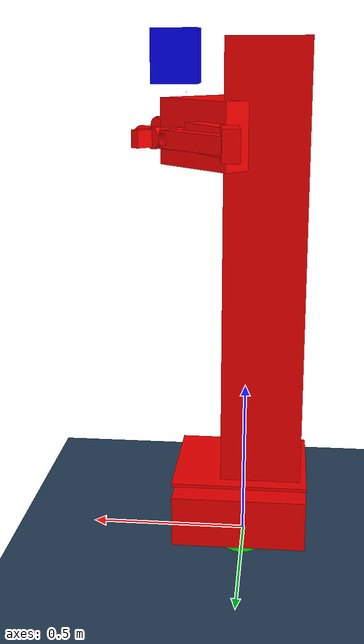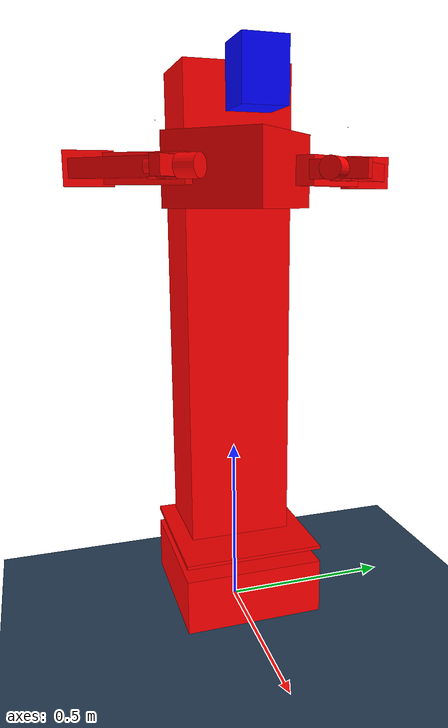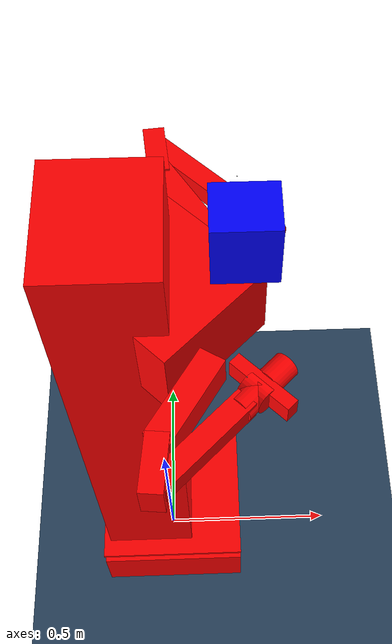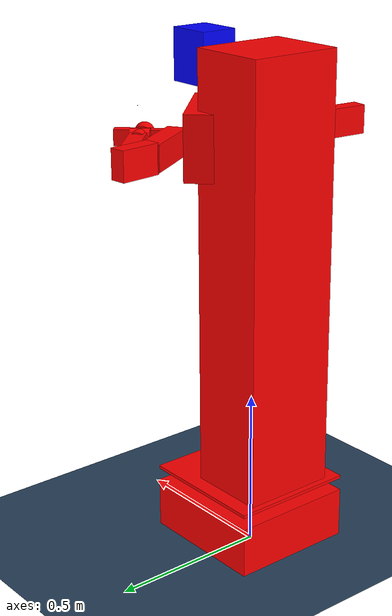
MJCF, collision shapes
<mujoco model="mmk2">

  <option integrator="RK4" solver="Newton" />
  <compiler angle="radian" meshdir="assets" texturedir="assets" />

  <default>
    <default class="obj_visual">
      <geom group="2" type="mesh" contype="0" conaffinity="0" />
    </default>
    <default class="obj_collision">
      <geom group="3" condim="6" solimp="2 1 0.01" solref="0.001 10" friction="1 0.005 0.0001" type="mesh" />
    </default>

    <default class="joint1">
      <joint axis="0 0 1" range="-3.14 2.09" actuatorfrcrange="-240 240" damping="2" frictionloss="150" />
      <position ctrlrange="-3.14 2.09" />
    </default>

    <default class="joint2">
      <joint axis="0 0 1" range="-2.96 0.17" actuatorfrcrange="-240 240" damping="2" frictionloss="150" />
      <position ctrlrange="-2.96 0.17" />
    </default>

    <default class="joint3">
      <joint axis="0 0 1" range="-0.087 3.14" actuatorfrcrange="-240 240" damping="2" frictionloss="150" />
      <position ctrlrange="-0.087 3.14" />
    </default>

    <default class="joint4">
      <joint axis="0 0 1" range="-2.96 2.96" actuatorfrcrange="-240 240" damping="1" frictionloss="50" />
      <position ctrlrange="-2.96 2.96" />
    </default>

    <default class="joint5">
      <joint axis="0 0 1" range="-1.74 1.74" actuatorfrcrange="-1000 1000" damping="1" frictionloss="50" />
      <position ctrlrange="-1.74 1.74" />
    </default>

    <default class="joint6">
      <joint axis="0 0 1" range="-3.14 3.14" actuatorfrcrange="-240 240" damping="0.1" frictionloss="5" />
      <position ctrlrange="-3.14 3.14" />
    </default>

    <default class="finger1">
      <joint axis="0 1 0" range="-0.04 0" type="slide" damping="0.5" frictionloss="15" />
    </default>

    <default class="finger2">
      <joint axis="0 1 0" range="0 0.04" type="slide" damping="0.5" frictionloss="15" />
    </default>

    <default class="slide_joint">
      <joint range="0.15 0.15" type="slide" axis="0 0 -1" frictionloss="1000000000" damping="1000000000" actuatorfrcrange="-1000000000 1000000000" />
      <position ctrlrange="0.15 0.15" kp="100000000" kv="10000000" />
    </default>
    <default class="head_yaw_joint">
      <joint axis="0 0 1" range="0.0 0.0" />
      <position ctrlrange="0.0 0.0" kp="5000" kv="100" />
    </default>
    <default class="head_pitch_joint">
      <joint axis="0 0 -1" range="-1.0 -1.0" />
      <position ctrlrange="-1.0 -1.0" kp="5000" kv="100" />
    </default>

    <default class="wheel">
      <joint axis="0 0 -1" damping="0.5" frictionloss="0.1" />
      <motor ctrlrange="-35 35" forcerange="-35 35" />
    </default>

  </default>

  <asset>
    <material name="Paint_Matte_Black" specular="0.5" shininess="0.5" rgba="0.00111266039 0.00111266039 0.00111266039 1.0" />
    <material name="Paint_Metallic_Cool_Grey" specular="0" shininess="0" rgba="1 1 1 1" emission="1" />
    <material name="Gree_Light_Base" specular="0.5" shininess="0.5" rgba="0.6 1 1 1" />
  </asset>

  <asset>
    <mesh name="arm_base_0" file="airbot_play/arm_base_0.obj" />
    <mesh name="arm_base_1" file="airbot_play/arm_base_1.obj" />
    <mesh name="link1" file="airbot_play/link1.obj" />
    <mesh name="link2_0" file="airbot_play/link2_0.obj" />
    <mesh name="link2_1" file="airbot_play/link2_1.obj" />
    <mesh name="link3_0" file="airbot_play/link3_0.obj" />
    <mesh name="link3_1" file="airbot_play/link3_1.obj" />
    <mesh name="link4" file="airbot_play/link4.obj" />
    <mesh name="link5_0" file="airbot_play/link5_0.obj" />
    <mesh name="link5_1" file="airbot_play/link5_1.obj" />
    <mesh name="link6" file="airbot_play/link6.stl" />
    <mesh name="camera_stand" file="airbot_play/camera_stand.obj" />
    <mesh name="left" file="airbot_play/left.obj" />
    <mesh name="right" file="airbot_play/right.obj" />
  </asset>

  <asset>

    <material name="MMK_Paint_Metallic_Cool_Grey" specular="0" shininess="0" rgba="1 1 1 1" emission="1" />
    <material name="MMK_Paint_Matte_Black" specular="0.5" shininess="0.5" rgba="0.00111266039 0.00111266039 0.00111266039 1.0" />
    <material name="MMK_Clear_Shiny_Plastic_Black" specular="0.5" shininess="0.5" rgba="0 0 0 1.0" />
    <material name="MMK_Copper_Textured" specular="0.5" shininess="0.5" rgba="0.539052486 0.539052486 0.539052486 1.0" />

    <mesh name="lft_wheel_link" file="mmk2/lft_wheel_link.STL" />
    <mesh name="rgt_wheel_link" file="mmk2/rgt_wheel_link.STL" />
    <mesh name="rgt_behind_wheel_link" file="mmk2/rgt_behind_wheel_link.obj" />
    <mesh name="lft_behind_wheel_link" file="mmk2/lft_behind_wheel_link.obj" />
    <mesh name="rgt_front_wheel_link" file="mmk2/rgt_front_wheel_link.obj" />
    <mesh name="lft_front_wheel_link" file="mmk2/lft_front_wheel_link.obj" />

    <mesh name="head_yaw_link" file="mmk2/head_yaw_link.STL" />

    <mesh name="mmk2_agv_0" file="mmk2/mmk2_agv_0.obj" />
    <mesh name="mmk2_agv_1" file="mmk2/mmk2_agv_1.obj" />
    <mesh name="mmk2_agv_2" file="mmk2/mmk2_agv_2.obj" />
    <mesh name="mmk2_agv_3" file="mmk2/mmk2_agv_3.obj" />
    <mesh name="mmk2_agv_4" file="mmk2/mmk2_agv_4.obj" />

    <mesh name="slide_link_white" file="mmk2/slide_link_white.obj" />
    <mesh name="slide_link_black" file="mmk2/slide_link_black.obj" />

    <mesh name="mmk2_lift_link_0" file="mmk2/mmk2_lift_link_0.obj" />
    <mesh name="mmk2_lift_link_1" file="mmk2/mmk2_lift_link_1.STL" />
    <mesh name="mmk2_lift_link_2" file="mmk2/mmk2_lift_link_2.obj" />

    <mesh name="mmk2_head_0" file="mmk2/mmk2_head_0.obj" />
    <mesh name="mmk2_head_1" file="mmk2/mmk2_head_1.obj" />
    <mesh name="mmk2_head_2" file="mmk2/mmk2_head_2.obj" />

    <mesh name="head_white" file="mmk2/head_white.obj" />
    <mesh name="head_black" file="mmk2/head_black.obj" />
    <mesh name="head_green" file="mmk2/head_green.obj" />

  </asset>

  <contact>
    <exclude body1="slide_link" body2="head_pitch_link" />
    <exclude body1="slide_link" body2="head_yaw_link" />
    <exclude body1="slide_link" body2="lftarm_link2" />
    <exclude body1="slide_link" body2="rgtarm_link2" />
  </contact>

  <tendon>
    <fixed name="lft_gripper_gear">
      <joint joint="lft_finger_left_joint" coef="-12.5" />
      <joint joint="lft_finger_right_joint" coef="12.5" />
    </fixed>
    <fixed name="rgt_gripper_gear">
      <joint joint="rgt_finger_left_joint" coef="-12.5" />
      <joint joint="rgt_finger_right_joint" coef="12.5" />
    </fixed>
  </tendon>

  <equality>
    <joint joint1="lft_finger_left_joint" joint2="lft_finger_right_joint" polycoef="0 -1 0 0 0 " />
    <joint joint1="rgt_finger_left_joint" joint2="rgt_finger_right_joint" polycoef="0 -1 0 0 0" />
  </equality>

  <visual>
    <global offwidth="1920" offheight="1080" />
    <quality shadowsize="4096" offsamples="4" />
    <headlight diffuse="0.6 0.6 0.6" ambient=".3 .3 .3" specular="0 0 0" />
    <scale com="0.05" camera="0.06" framelength="0.5" framewidth="0.02" forcewidth="0.1" contactwidth="0.01" contactheight="0.05" />
  </visual>

  <asset>
    <texture type="2d" name="groundplane" builtin="checker" mark="edge" rgb1="0.2 0.3 0.4" rgb2="0.1 0.2 0.3" markrgb="0.8 0.8 0.8" width="300" height="300" />
    <material name="groundplane" texture="groundplane" texuniform="true" texrepeat="5 5" reflectance="0.2" />
  </asset>

  <worldbody>
    <light castshadow="false" directional="true" diffuse=".3 .3 .3" specular="0.3 0.3 0.3" pos="-1 -1 1" dir="1 1 -1" />
    <light directional="true" diffuse=".3 .3 .3" specular="0.3 0.3 0.3" pos="0 0 1" dir="-1 1 -1" />
    <light castshadow="false" directional="true" diffuse=".3 .3 .3" specular="0.3 0.3 0.3" pos="0 1 1" dir="0 -1 -1" />
    <geom name="floor" type="plane" size="0 0 0.01" material="groundplane" pos="0 0 0" />
    <body name="mmk2" pos="0 0 0">
      <joint type="free" frictionloss="0.0001" />
      <inertial pos="0 0 0" mass="1000000.0" diaginertia="1000000.0 1000000.0 1000000.0" />
      <body name="agv_link" pos="0.02371 0 0">
        <site name="base_link" pos="-0.02371 0 0" size="0.001" type="sphere" />
        <site name="laser" pos="0.09 0 0.215" size="0.001" type="sphere" />
        <geom mesh="mmk2_agv_0" material="Paint_Matte_Black" class="obj_visual" />
        <geom mesh="mmk2_agv_1" material="MMK_Copper_Textured" class="obj_visual" />
        <geom mesh="mmk2_agv_2" material="Paint_Metallic_Cool_Grey" class="obj_visual" />
        <geom mesh="mmk2_agv_3" material="Paint_Matte_Black" class="obj_visual" />
        <geom mesh="mmk2_agv_4" rgba="0.592 0.9 0.9 1" class="obj_visual" />

        <geom euler="0 0 0" type="box" rgba="1 0 0 1" group="4" size="0.21 0.2 0.005" pos="-0.015 0 0.235" density="725.0" />
        <geom euler="0 0 0" type="box" rgba="1 0 0 1" group="4" size="0.21 0.2 0.08" pos="-0.015 0 0.11" density="725.0" />
        <geom type="box" rgba="1 0 0 1" group="4" size="0.125 0.15 0.675" pos="-0.08 0 0.915" density="200.0" />

        <geom name="rgt_front_wheel" pos=" 0.13045 -0.089989 0.0585" mass="1.1566" type="sphere" size="0.06" rgba="1 0 0 1" group="4" condim="1" priority="1" />
        <geom name="lft_front_wheel" pos=" 0.13045  0.090011 0.0585" mass="1.1566" type="sphere" size="0.06" rgba="1 0 0 1" group="4" condim="1" priority="1" />
        <geom name="rgt_behind_wheel" pos="-0.15755 -0.099989 0.0585" mass="1.1566" type="sphere" size="0.06" rgba="1 0 0 1" group="4" condim="1" priority="1" />
        <geom name="lft_behind_wheel" pos="-0.15755  0.10001  0.0585" mass="1.1566" type="sphere" size="0.06" rgba="1 0 0 1" group="4" condim="1" priority="1" />

        <geom mesh="rgt_front_wheel_link" euler="0 0 1.5708" pos=" 0.13045 -0.089989 0.085" rgba="0.2 0.2 0.2 1" class="obj_visual" />
        <geom mesh="lft_front_wheel_link" euler="0 0 1.5708" pos=" 0.13045  0.090011 0.085" rgba="0.2 0.2 0.2 1" class="obj_visual" />
        <geom mesh="rgt_behind_wheel_link" euler="0 0 1.5708" pos="-0.15755 -0.099989 0.085" rgba="0.2 0.2 0.2 1" class="obj_visual" />
        <geom mesh="lft_behind_wheel_link" euler="0 0 1.5708" pos="-0.15755  0.10001  0.085" rgba="0.2 0.2 0.2 1" class="obj_visual" />

        <geom pos="-0.006 0 0.244" euler="0 0 1.5708" mesh="mmk2_lift_link_0" rgba="0.57 0.95 0.95 1" class="obj_visual" />
        <geom pos="-0.0062 0 0.24" euler="0 0 1.5708" mesh="mmk2_lift_link_1" material="Paint_Metallic_Cool_Grey" class="obj_visual" />
        <geom pos="0.002 0 0.264" euler="0 0 1.5708" mesh="mmk2_lift_link_2" material="Paint_Matte_Black" class="obj_visual" />

        <body name="lft_wheel_link" pos="-0.02371 0.16325 0.082" euler="1.5707963267948966 0 0">
          <inertial pos="2.9309e-07 5.2077e-06 -0.029871" quat="0.28052 0.649078 -0.280681 0.649018" mass="1.1566" diaginertia="0.0035528 0.0021045 0.0021045" />
          <joint name="lft_wheel_joint" class="wheel" />
          <geom name="lft_wheel" type="mesh" rgba="0.2 0.2 0.2 1" mesh="lft_wheel_link" class="obj_visual" />
          <geom pos="0 0 0" type="cylinder" size="0.0838 0.005" rgba="0 1 0 1" group="4" friction="0.95" />
        </body>

        <body name="rgt_wheel_link" pos="-0.02371 -0.16325 0.082" euler="1.5707963267948966 0 0">
          <inertial pos="2.9312e-07 5.2196e-06 0.029871" quat="0.620108 0.339813 -0.620017 0.339959" mass="1.1566" diaginertia="0.0035528 0.0021045 0.0021045" />
          <joint name="rgt_wheel_joint" class="wheel" />
          <geom name="rgt_wheel" type="mesh" rgba="0.2 0.2 0.2 1" mesh="rgt_wheel_link" class="obj_visual" />
          <geom pos="0 0 0" type="cylinder" size="0.0838 0.005" rgba="0 1 0 1" group="4" friction="0.95" />
        </body>

        <body name="slide_link" pos="0 0 1.311">
          <inertial pos="0 0 0" mass="1000000.0" diaginertia="1000000.0 1000000.0 1000000.0" />
          <joint name="slide_joint" class="slide_joint" />
          <geom mesh="slide_link_black" material="MMK_Clear_Shiny_Plastic_Black" class="obj_visual" />
          <geom mesh="slide_link_white" material="Paint_Metallic_Cool_Grey" class="obj_visual" />
          <geom euler="0 0 0.7854" type="box" rgba="1 0 0 1" group="4" size="0.15 0.15 0.1" pos="0.035 0 0" density="80.0" />
          <body name="head_yaw_link" pos="0.18375 0 0.023" euler="0 0 1.5708">
            <inertial pos="0 0 0" mass="0.083111" diaginertia="4.83755e-05 4.39275e-05 2.73932e-05" />
            <joint name="head_yaw_joint" class="head_yaw_joint" />
            <geom material="Paint_Matte_Black" mesh="head_yaw_link" class="obj_visual" />
            <body name="head_pitch_link" pos="0.00099952 3.1059e-05 0.058" quat="0.5 -0.5 0.5 -0.5">
              <inertial pos="-0.0352711 0.123044 -0.0165046" quat="0.714586 0.699243 0.0178013 0.0104566" mass="0.767298" diaginertia="0.00394021 0.00338829 0.00196438" />
              <joint name="head_pitch_joint" class="head_pitch_joint" />
              <geom type="box" rgba="0 0 1 1" group="4" size="0.07 0.08 0.06" pos="0.015 -0.14 0" />
              <geom type="cylinder" rgba="0 0 0 1" size="0.015 0.025" />
              <geom mesh="head_green" rgba="0.57 0.95 0.95 1" class="obj_visual" />
              <geom mesh="head_black" material="Paint_Matte_Black" class="obj_visual" />
              <geom mesh="head_white" material="Paint_Metallic_Cool_Grey" class="obj_visual" />
              <body pos="0.0755 -0.1855 0" quat="0. 0.70711 0. -0.70711">
                <body name="head_cam" pos="-0.035 0 0" euler="-0.33 0 0">
                  <camera name="head_cam" fovy="72.5376526571421" />
                  <site name="headeye" euler="3.1416 0 0" size="0.001" type="sphere" />
                </body>
              </body>
            </body>
          </body>

          <body name="lftarm_base" pos="0.034 0.1015 0" quat="0.65328 -0.65328 0.2706 -0.2706">
            <geom mesh="arm_base_1" material="Paint_Matte_Black" class="obj_visual" />

            <site name="left_center" size="0.001" type="sphere" />

            <body name="lftarm_link1" pos="0 0 0.1172">
              <inertial pos="7.9126e-05 -0.002527 -0.0041359" quat="0.696716 0.716558 0.0238919 -0.0236876" mass="0.5571" diaginertia="0.000346294 0.000325437 0.000286269" />
              <joint name="lftarm_joint1" class="joint1" />
              <geom name="lftarm_link1" rgba="0.1 0.1 0.1 1" mesh="link1" class="obj_visual" />
              <body name="lftarm_link2" quat="0.135866 0.135867 -0.69393 0.693932">
                <inertial pos="0.22493 0.0047721 0.008023" quat="-0.210875 0.632473 -0.273056 0.693506" mass="0.64621" diaginertia="0.00516535 0.00505042 0.000418626" />
                <joint name="lftarm_joint2" class="joint2" />
                <geom type="box" pos="0.08 0.015 0" euler="0 0 0.15" size="0.11 0.03 0.04" rgba="1 0 0 1" group="4" />
                <geom type="box" pos="0.235 0.015 0" euler="0 0 -0.3" size="0.065 0.025 0.045" rgba="1 0 0 1" group="4" />
                <geom mesh="link2_0" material="Paint_Matte_Black" class="obj_visual" />
                <geom mesh="link2_1" material="Paint_Metallic_Cool_Grey" class="obj_visual" />
                <body name="lftarm_link3" pos="0.27009 0 0" quat="0.192144 0 0 -0.981367">
                  <inertial pos="0.16813 -5.5576e-05 0.0031184" quat="0.511278 0.488423 0.489191 0.510617" mass="0.26829" diaginertia="0.0031527 0.0030951 0.000239403" />
                  <joint name="lftarm_joint3" class="joint3" />
                  <geom type="box" pos="0.13 0 0" size="0.13 0.025 0.025" rgba="1 0 0 1" group="4" />
                  <geom mesh="link3_0" material="Paint_Matte_Black" class="obj_visual" />
                  <geom mesh="link3_1" material="Paint_Metallic_Cool_Grey" class="obj_visual" />
                  <body name="lftarm_link4" pos="0.29015 0 0" quat="-2.59734e-06 0.707105 2.59735e-06 0.707108">
                    <inertial pos="5.2436e-06 0.00040412 -0.03228" quat="0.999969 -0.000174762 -0.00792041 -6.98144e-05" mass="0.34876" diaginertia="0.000423574 0.000412 0.000126826" />
                    <joint name="lftarm_joint4" class="joint4" />
                    <geom type="cylinder" pos="0 0 0" size="0.03 0.03" euler="1.5708 0 0" rgba="1 0 0 1" group="4" />
                    <geom name="lftarm_link4" rgba="0.1 0.1 0.1 1" mesh="link4" class="obj_visual" />
                    <body name="lftarm_link5" quat="0.707105 0.707108 0 0">
                      <inertial pos="8.3328e-06 0.026148 0.002525" quat="0.531568 0.4663 0.4663 0.531568" mass="0.36132" diaginertia="0.0004677 0.000432922 0.000178178" />
                      <joint name="lftarm_joint5" class="joint5" />
                      <geom type="cylinder" pos="0 0.06 0" size="0.03 0.03" euler="1.5708 0 0" rgba="1 0 0 1" group="4" />
                      <geom mesh="link5_0" material="Paint_Matte_Black" class="obj_visual" />
                      <geom mesh="link5_1" material="Paint_Metallic_Cool_Grey" class="obj_visual" />
                      <body name="lftarm_link6" pos="0 0.08645 0" quat="0 0 -0.70710678 -0.70710678">
                        <inertial pos="0.020482 2.5483e-05 -0.079685" mass="0.40081" diaginertia="0.00109963 0.00109963 0.00109963" />
                        <joint name="lftarm_joint6" class="joint6" />
                        <geom type="cylinder" pos="0 0 -0.11" size="0.03 0.03" euler="0 0 0" rgba="1 0 0 1" group="4" />
                        <geom type="box" pos="0 0 -0.07" size="0.025 0.08 0.015" rgba="1 0 0 1" group="4" />
                        <geom rgba="0.1 0.1 0.1 1" mesh="link6" class="obj_visual" />
                        <geom pos="0 0 0.15" euler="0 0 2.3558" rgba="0.1 0.1 0.1 1" mesh="camera_stand" class="obj_visual" />
                        <body pos="-0.105 0 -0.12" euler="3.1416 0 1.5708">
                          <site name="left_cam" euler="3.1416 0 0" size="0.001" type="sphere" />
                          <camera name="lft_handeye" pos="0.05 -0.2 -0.15" euler="0.9236 0 0.785" fovy="72.5376526571421" />
                        </body>
                        <site name="lft_endpoint" pos="0 0 0" euler="0 -1.5708 0" size="0.001" type="sphere" />
                        <body name="left_hand" pos="0 0 0.03" quat="0 0 -1 0">
                          <inertial pos="0 0 0" mass="0.05" diaginertia="0.00005 0.00005 0.00005" />
                          <body name="lft_finger_left" pos="0 0.003 0" quat="0.707105 0 -0.707108 0">
                            <inertial pos="0 0 0" mass="0.08" diaginertia="0.00001 0.00001 0.00001" />
                            <joint name="lft_finger_left_joint" axis="0 1 0" type="slide" range="-0.04 0" damping="0.5" frictionloss="15" />
                          </body>
                          <body name="lft_finger_right" pos="0 -0.003 0" quat="0.707105 0 -0.707108 0">
                            <inertial pos="0 0 0" mass="0.01" diaginertia="0.00001 0.00001 0.00001" />
                            <joint name="lft_finger_right_joint" axis="0 1 0" type="slide" range="0 0.04" damping="0.5" frictionloss="15" />
                          </body>
                        </body>
                      </body>
                    </body>
                  </body>
                </body>
              </body>
            </body>

          </body>

          <body name="rgtarm_base" pos="0.034 -0.1015 0" quat="0.65328 0.65328 0.2706 0.2706">
            <geom mesh="arm_base_1" material="Paint_Matte_Black" class="obj_visual" />

            <site name="right_center" size="0.001" type="sphere" />
            <body name="rgtarm_link1" pos="0 0 0.1172">
              <inertial pos="7.9126e-05 -0.002527 -0.0041359" quat="0.696716 0.716558 0.0238919 -0.0236876" mass="0.5571" diaginertia="0.000346294 0.000325437 0.000286269" />
              <joint name="rgtarm_joint1" class="joint1" />
              <geom name="rgtarm_link1" rgba="0.1 0.1 0.1 1" mesh="link1" class="obj_visual" />
              <body name="rgtarm_link2" quat="0.135866 0.135867 -0.69393 0.693932">
                <inertial pos="0.22493 0.0047721 0.008023" quat="-0.210875 0.632473 -0.273056 0.693506" mass="0.64621" diaginertia="0.00516535 0.00505042 0.000418626" />
                <joint name="rgtarm_joint2" class="joint2" />
                <geom type="box" pos="0.08 0.015 0" euler="0 0 0.15" size="0.11 0.03 0.04" rgba="1 0 0 1" group="4" />
                <geom type="box" pos="0.235 0.015 0" euler="0 0 -0.3" size="0.065 0.025 0.045" rgba="1 0 0 1" group="4" />
                <geom mesh="link2_0" material="Paint_Matte_Black" class="obj_visual" />
                <geom mesh="link2_1" material="Paint_Metallic_Cool_Grey" class="obj_visual" />
                <body name="rgtarm_link3" pos="0.27009 0 0" quat="0.192144 0 0 -0.981367">
                  <inertial pos="0.16813 -5.5576e-05 0.0031184" quat="0.511278 0.488423 0.489191 0.510617" mass="0.26829" diaginertia="0.0031527 0.0030951 0.000239403" />
                  <joint name="rgtarm_joint3" class="joint3" />
                  <geom type="box" pos="0.13 0 0" size="0.13 0.025 0.025" rgba="1 0 0 1" group="4" />
                  <geom mesh="link3_0" material="Paint_Matte_Black" class="obj_visual" />
                  <geom mesh="link3_1" material="Paint_Metallic_Cool_Grey" class="obj_visual" />
                  <body name="rgtarm_link4" pos="0.29015 0 0" quat="-2.59734e-06 0.707105 2.59735e-06 0.707108">
                    <inertial pos="5.2436e-06 0.00040412 -0.03228" quat="0.999969 -0.000174762 -0.00792041 -6.98144e-05" mass="0.34876" diaginertia="0.000423574 0.000412 0.000126826" />
                    <joint name="rgtarm_joint4" class="joint4" />
                    <geom type="cylinder" pos="0 0 0" size="0.03 0.03" euler="1.5708 0 0" rgba="1 0 0 1" group="4" />
                    <geom name="rgtarm_link4" rgba="0.1 0.1 0.1 1" mesh="link4" class="obj_visual" />
                    <body name="rgtarm_link5" quat="0.707105 0.707108 0 0">
                      <inertial pos="8.3328e-06 0.026148 0.002525" quat="0.531568 0.4663 0.4663 0.531568" mass="0.36132" diaginertia="0.0004677 0.000432922 0.000178178" />
                      <joint name="rgtarm_joint5" class="joint5" />
                      <geom type="cylinder" pos="0 0.06 0" size="0.03 0.03" euler="1.5708 0 0" rgba="1 0 0 1" group="4" />
                      <geom mesh="link5_0" material="Paint_Matte_Black" class="obj_visual" />
                      <geom mesh="link5_1" material="Paint_Metallic_Cool_Grey" class="obj_visual" />
                      <body name="rgtarm_link6" pos="0 0.08645 0" quat="-0.707105 0.707105 0 0">
                        <inertial pos="0.020482 2.5483e-05 -0.079685" mass="0.40081" diaginertia="0.00109963 0.00109963 0.00109963" />
                        <joint name="rgtarm_joint6" class="joint6" />
                        <geom type="cylinder" pos="0 0 -0.11" size="0.03 0.03" euler="0 0 0" rgba="1 0 0 1" group="4" />
                        <geom type="box" pos="0 0 -0.07" size="0.025 0.08 0.015" rgba="1 0 0 1" group="4" />
                        <geom rgba="0.1 0.1 0.1 1" mesh="link6" class="obj_visual" />
                        <geom pos="0 0 0.15" euler="0 0 -2.3558" rgba="0.1 0.1 0.1 1" mesh="camera_stand" class="obj_visual" />
                        <body pos="-0.105 0 -0.12" euler="3.1416 0 1.5708">
                          <site name="right_cam" euler="3.1416 0 0" size="0.001" type="sphere" />
                          <camera name="rgt_handeye" pos="-0.05 -0.2 -0.15" euler="0.9236 0 -0.785" fovy="72.5376526571421" />
                        </body>
                        <site name="rgt_endpoint" pos="0 0 0" euler="0 -1.5708 0" size="0.001" type="sphere" />
                        <body name="right_hand" pos="0 0 0.03" quat="0.00676208 0.00509819 0.999784 0.0189715">
                          <inertial pos="0 0 0" mass="0.08" diaginertia="0.00005 0.00005 0.00005" />
                          <body name="rgt_finger_left" pos="0 0.003 0" quat="0.707105 0 -0.707108 0">
                            <inertial pos="0 0 0" mass="0.01" diaginertia="0.00001 0.00001 0.00001" />
                            <joint name="rgt_finger_left_joint" axis="0 1 0" type="slide" range="-0.04 0" damping="0.5" frictionloss="15" />
                          </body>
                          <body name="rgt_finger_right" pos="0 -0.003 0" quat="0.707105 0 -0.707108 0">
                            <inertial pos="0 0 0" mass="0.01" diaginertia="0.00001 0.00001 0.00001" />
                            <joint name="rgt_finger_right_joint" axis="0 1 0" type="slide" range="0 0.04" damping="0.5" frictionloss="15" />
                          </body>
                        </body>
                      </body>
                    </body>
                  </body>
                </body>
              </body>
            </body>
          </body>
        </body>

      </body>

    </body>
  </worldbody>

  <actuator>
    <motor name="lft_wheel_motor" class="wheel" joint="lft_wheel_joint" />
    <motor name="rgt_wheel_motor" class="wheel" joint="rgt_wheel_joint" />

    <position name="lift" joint="slide_joint" class="slide_joint" kp="100000000" kv="10000000" />
    <position name="head_yaw" joint="head_yaw_joint" class="head_yaw_joint" kp="5000" />
    <position name="head_pitch" joint="head_pitch_joint" class="head_pitch_joint" kp="5000" />

    <position name="lftarm_joint1" joint="lftarm_joint1" class="joint1" kp="1000" />
    <position name="lftarm_joint2" joint="lftarm_joint2" class="joint2" kp="1000" />
    <position name="lftarm_joint3" joint="lftarm_joint3" class="joint3" kp="1000" />
    <position name="lftarm_joint4" joint="lftarm_joint4" class="joint4" kp="350" />
    <position name="lftarm_joint5" joint="lftarm_joint5" class="joint5" kp="10000" kv="100" />
    <position name="lftarm_joint6" joint="lftarm_joint6" class="joint6" kp="350" />
    <position name="lft_gripper" tendon="lft_gripper_gear" ctrllimited="true" ctrlrange="0. 1." kp="3" user="1" forcelimited="true" forcerange="-1 1" />

    <position name="rgtarm_joint1" joint="rgtarm_joint1" class="joint1" kp="1000" />
    <position name="rgtarm_joint2" joint="rgtarm_joint2" class="joint2" kp="1000" />
    <position name="rgtarm_joint3" joint="rgtarm_joint3" class="joint3" kp="1000" />
    <position name="rgtarm_joint4" joint="rgtarm_joint4" class="joint4" kp="350" />
    <position name="rgtarm_joint5" joint="rgtarm_joint5" class="joint5" kp="10000" kv="100" />
    <position name="rgtarm_joint6" joint="rgtarm_joint6" class="joint6" kp="350" />
    <position name="rgt_gripper" tendon="rgt_gripper_gear" ctrllimited="true" ctrlrange="0. 1." kp="3" user="1" forcelimited="true" forcerange="-1 1" />
  </actuator>

  <sensor>
    <jointpos name="lft_wheel_pos" joint="lft_wheel_joint" />
    <jointpos name="rgt_wheel_pos" joint="rgt_wheel_joint" />
    <jointpos name="lift_pos" joint="slide_joint" />
    <jointpos name="head_yaw_pos" joint="head_yaw_joint" />
    <jointpos name="head_pitch_pos" joint="head_pitch_joint" />
    <jointpos name="lftarm_joint1_pos" joint="lftarm_joint1" />
    <jointpos name="lftarm_joint2_pos" joint="lftarm_joint2" />
    <jointpos name="lftarm_joint3_pos" joint="lftarm_joint3" />
    <jointpos name="lftarm_joint4_pos" joint="lftarm_joint4" />
    <jointpos name="lftarm_joint5_pos" joint="lftarm_joint5" />
    <jointpos name="lftarm_joint6_pos" joint="lftarm_joint6" />
    <tendonpos name="lft_gripper_pos" tendon="lft_gripper_gear" />
    <jointpos name="rgtarm_joint1_pos" joint="rgtarm_joint1" />
    <jointpos name="rgtarm_joint2_pos" joint="rgtarm_joint2" />
    <jointpos name="rgtarm_joint3_pos" joint="rgtarm_joint3" />
    <jointpos name="rgtarm_joint4_pos" joint="rgtarm_joint4" />
    <jointpos name="rgtarm_joint5_pos" joint="rgtarm_joint5" />
    <jointpos name="rgtarm_joint6_pos" joint="rgtarm_joint6" />
    <tendonpos name="rgt_gripper_pos" tendon="rgt_gripper_gear" />

    <jointvel name="lft_wheel_vel" joint="lft_wheel_joint" />
    <jointvel name="rgt_wheel_vel" joint="rgt_wheel_joint" />
    <jointvel name="lift_vel" joint="slide_joint" />
    <jointvel name="head_yaw_vel" joint="head_yaw_joint" />
    <jointvel name="head_pitch_vel" joint="head_pitch_joint" />
    <jointvel name="lftarm_joint1_vel" joint="lftarm_joint1" />
    <jointvel name="lftarm_joint2_vel" joint="lftarm_joint2" />
    <jointvel name="lftarm_joint3_vel" joint="lftarm_joint3" />
    <jointvel name="lftarm_joint4_vel" joint="lftarm_joint4" />
    <jointvel name="lftarm_joint5_vel" joint="lftarm_joint5" />
    <jointvel name="lftarm_joint6_vel" joint="lftarm_joint6" />
    <tendonvel name="lft_gripper_vel" tendon="lft_gripper_gear" />
    <jointvel name="rgtarm_joint1_vel" joint="rgtarm_joint1" />
    <jointvel name="rgtarm_joint2_vel" joint="rgtarm_joint2" />
    <jointvel name="rgtarm_joint3_vel" joint="rgtarm_joint3" />
    <jointvel name="rgtarm_joint4_vel" joint="rgtarm_joint4" />
    <jointvel name="rgtarm_joint5_vel" joint="rgtarm_joint5" />
    <jointvel name="rgtarm_joint6_vel" joint="rgtarm_joint6" />
    <tendonvel name="rgt_gripper_vel" tendon="rgt_gripper_gear" />

    <jointactuatorfrc name="lft_wheel_force" joint="lft_wheel_joint" />
    <jointactuatorfrc name="rgt_wheel_force" joint="rgt_wheel_joint" />
    <jointactuatorfrc name="lift_force" joint="slide_joint" />
    <jointactuatorfrc name="head_yaw_force" joint="head_yaw_joint" />
    <jointactuatorfrc name="head_pitch_force" joint="head_pitch_joint" />
    <jointactuatorfrc name="lftarm_joint1_force" joint="lftarm_joint1" />
    <jointactuatorfrc name="lftarm_joint2_force" joint="lftarm_joint2" />
    <jointactuatorfrc name="lftarm_joint3_force" joint="lftarm_joint3" />
    <jointactuatorfrc name="lftarm_joint4_force" joint="lftarm_joint4" />
    <jointactuatorfrc name="lftarm_joint5_force" joint="lftarm_joint5" />
    <jointactuatorfrc name="lftarm_joint6_force" joint="lftarm_joint6" />
    <jointactuatorfrc name="lft_gripper_force" joint="lft_finger_right_joint" />
    <jointactuatorfrc name="rgtarm_joint1_force" joint="rgtarm_joint1" />
    <jointactuatorfrc name="rgtarm_joint2_force" joint="rgtarm_joint2" />
    <jointactuatorfrc name="rgtarm_joint3_force" joint="rgtarm_joint3" />
    <jointactuatorfrc name="rgtarm_joint4_force" joint="rgtarm_joint4" />
    <jointactuatorfrc name="rgtarm_joint5_force" joint="rgtarm_joint5" />
    <jointactuatorfrc name="rgtarm_joint6_force" joint="rgtarm_joint6" />
    <jointactuatorfrc name="rgt_gripper_force" joint="rgt_finger_right_joint" />

    <framepos name="mmk2_base_posi" objtype="site" objname="base_link" />
    <framequat name="mmk2_base_quat" objtype="site" objname="base_link" />
    <framelinvel name="mmk2_base_linear_vel" objtype="site" objname="base_link" />
    <gyro name="mmk2_base_gyro" site="base_link" />
    <accelerometer name="mmk2_base_acc" site="base_link" />

    <framepos name="lftarm_endpoint_posi" objtype="site" objname="lft_endpoint" reftype="site" refname="base_link" />
    <framequat name="lftarm_endpoint_quat" objtype="site" objname="lft_endpoint" reftype="site" refname="base_link" />

    <framepos name="rgtarm_endpoint_posi" objtype="site" objname="rgt_endpoint" reftype="site" refname="base_link" />
    <framequat name="rgtarm_endpoint_quat" objtype="site" objname="rgt_endpoint" reftype="site" refname="base_link" />

  </sensor>

</mujoco>
